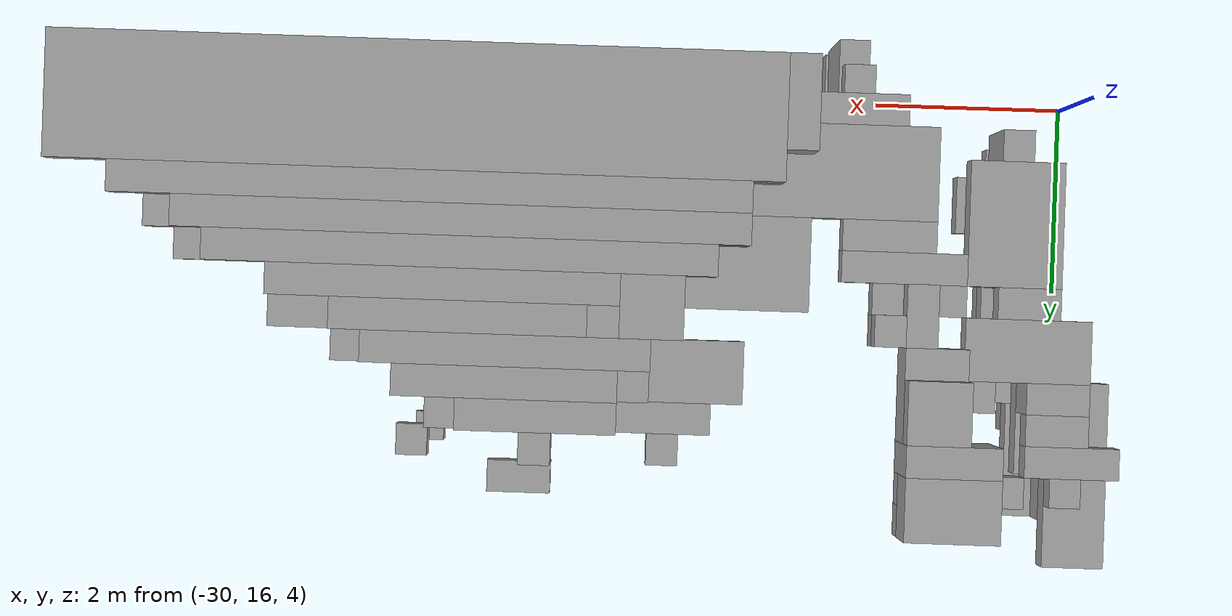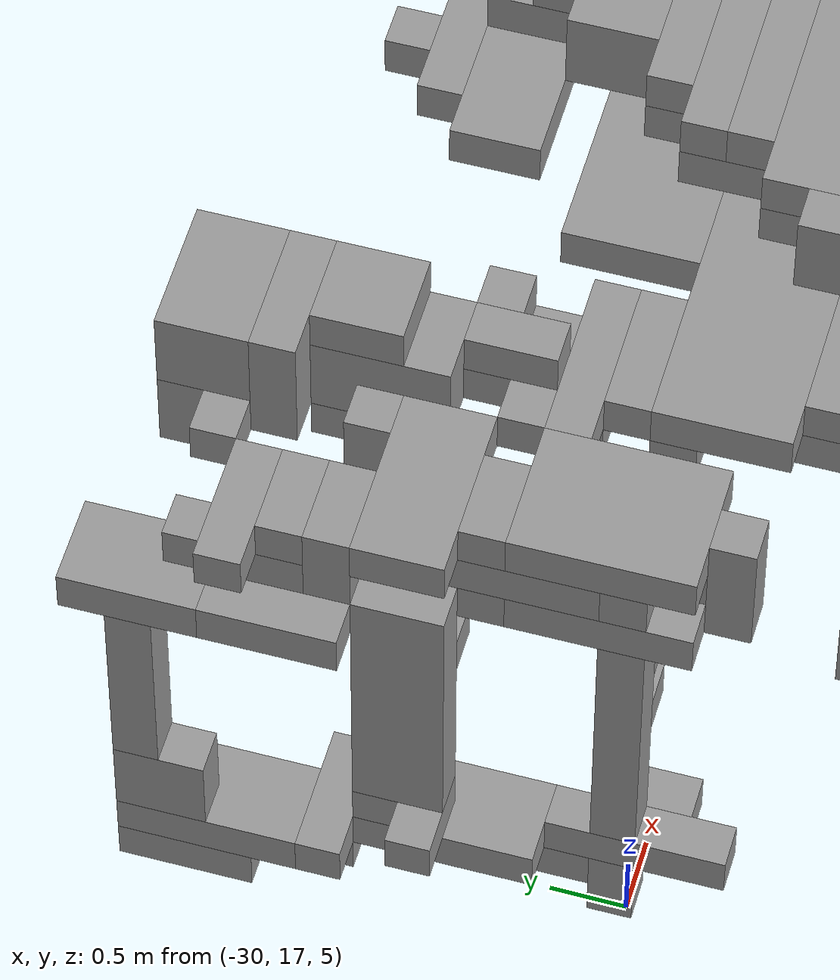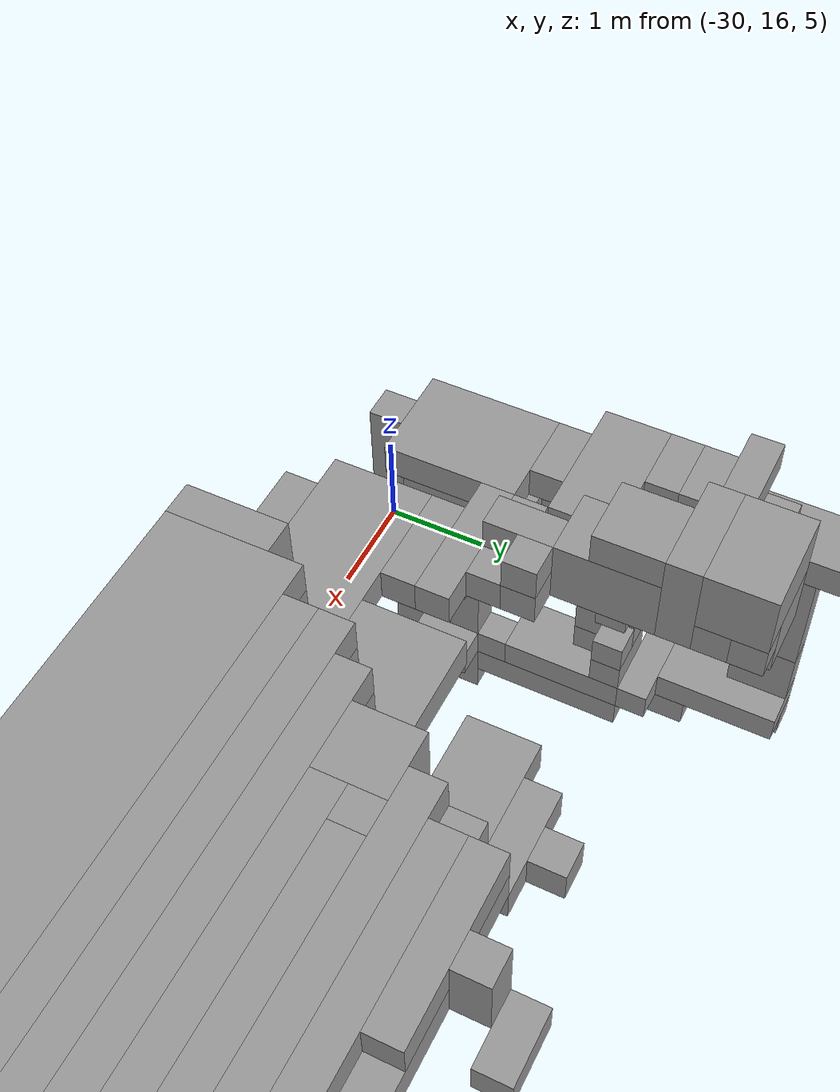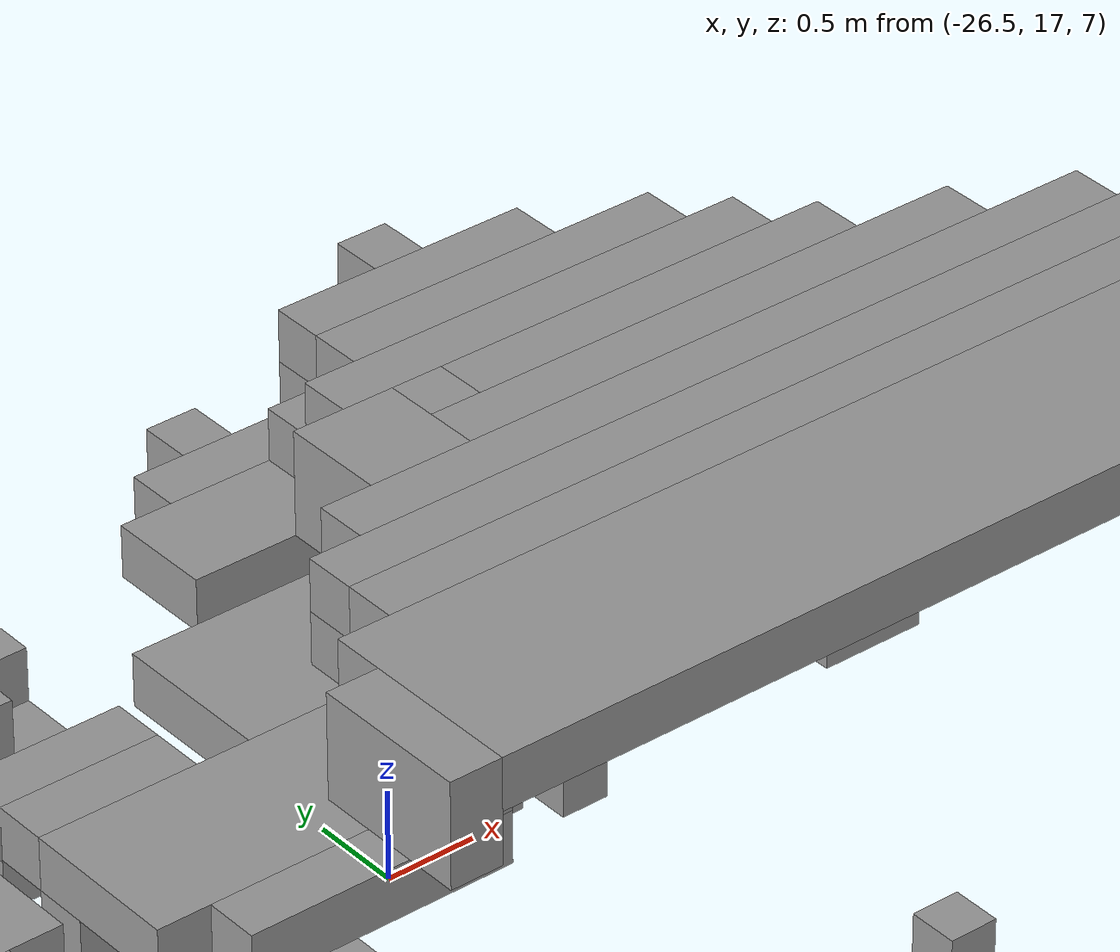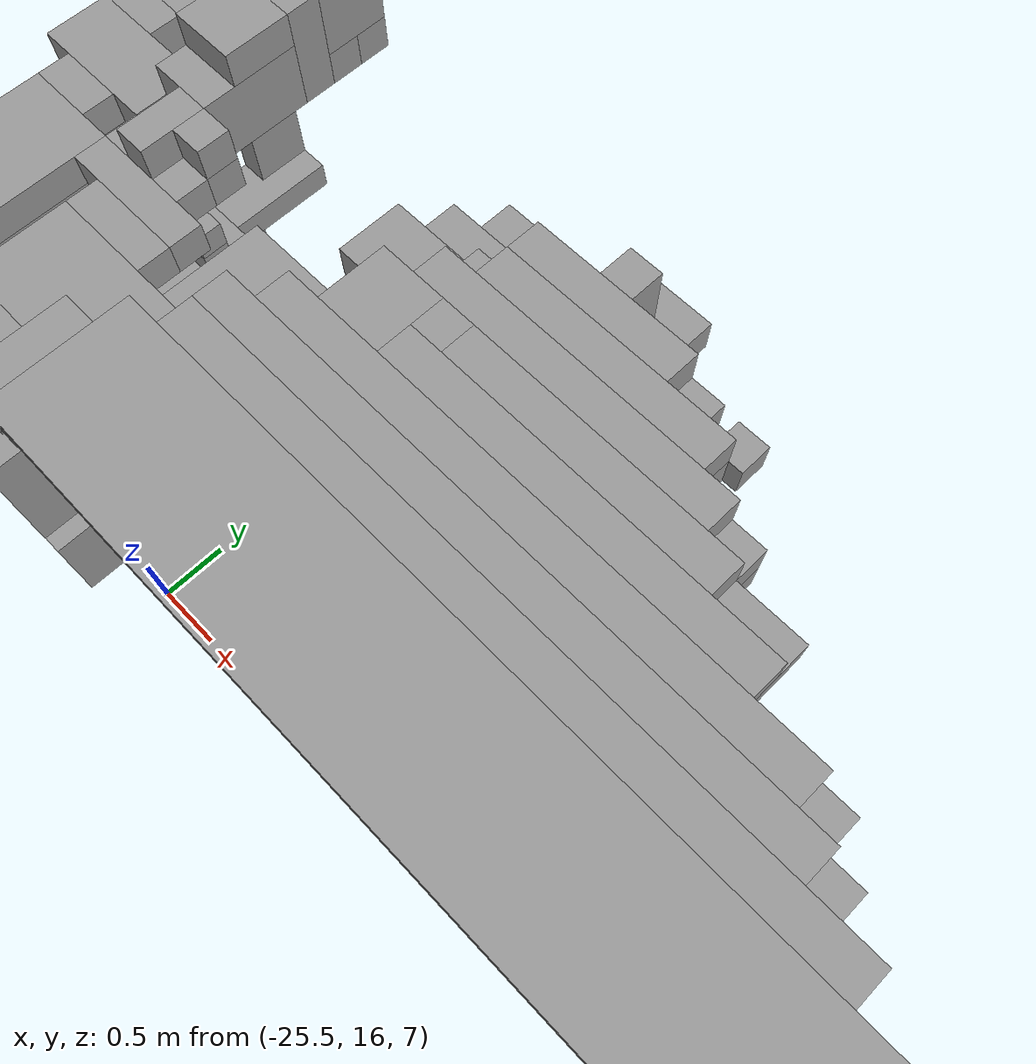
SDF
<sdf version="1.6">
 <world name="bt_world">
  <include><uri>model://sun</uri></include>
  <model name="obstacle_28">
   <static>true</static>
   <pose>-29.7 18.45 4.95 0 0 0</pose>
   <link name="link">
    <collision name="collision"><geometry><box><size>0.6 0.3 0.3</size></box></geometry></collision>
    <visual name="visual">
     <geometry><box><size>0.6 0.3 0.3</size></box></geometry>
     <material><ambient>0.5 0.5 0.5 1</ambient><diffuse>0.6 0.6 0.6 1</diffuse></material>
    </visual>
   </link>
  </model>
  <model name="obstacle_29">
   <static>true</static>
   <pose>-29.549999999999997 19.05 4.6499999999999995 0 0 0</pose>
   <link name="link">
    <collision name="collision">
     <geometry><box><size>0.8999999999999999 0.3 0.3</size></box></geometry>
    </collision>
    <visual name="visual">
     <geometry><box><size>0.8999999999999999 0.3 0.3</size></box></geometry>
     <material><ambient>0.5 0.5 0.5 1</ambient><diffuse>0.6 0.6 0.6 1</diffuse></material>
    </visual>
   </link>
  </model>
  <model name="obstacle_30">
   <static>true</static>
   <pose>-29.549999999999997 19.349999999999998 7.05 0 0 0</pose>
   <link name="link">
    <collision name="collision">
     <geometry><box><size>0.8999999999999999 0.8999999999999999 0.3</size></box></geometry>
    </collision>
    <visual name="visual">
     <geometry><box><size>0.8999999999999999 0.8999999999999999 0.3</size></box></geometry>
     <material><ambient>0.5 0.5 0.5 1</ambient><diffuse>0.6 0.6 0.6 1</diffuse></material>
    </visual>
   </link>
  </model>
  <model name="obstacle_31">
   <static>true</static>
   <pose>-29.7 19.8 4.6499999999999995 0 0 0</pose>
   <link name="link">
    <collision name="collision"><geometry><box><size>0.6 1.2 0.3</size></box></geometry></collision>
    <visual name="visual">
     <geometry><box><size>0.6 1.2 0.3</size></box></geometry>
     <material><ambient>0.5 0.5 0.5 1</ambient><diffuse>0.6 0.6 0.6 1</diffuse></material>
    </visual>
   </link>
  </model>
  <model name="obstacle_32">
   <static>true</static>
   <pose>-29.849999999999998 19.95 4.35 0 0 0</pose>
   <link name="link">
    <collision name="collision">
     <geometry><box><size>0.3 0.8999999999999999 0.3</size></box></geometry>
    </collision>
    <visual name="visual">
     <geometry><box><size>0.3 0.8999999999999999 0.3</size></box></geometry>
     <material><ambient>0.5 0.5 0.5 1</ambient><diffuse>0.6 0.6 0.6 1</diffuse></material>
    </visual>
   </link>
  </model>
  <model name="obstacle_33">
   <static>true</static>
   <pose>-29.549999999999997 19.65 7.6499999999999995 0 0 0</pose>
   <link name="link">
    <collision name="collision">
     <geometry><box><size>0.8999999999999999 0.3 0.3</size></box></geometry>
    </collision>
    <visual name="visual">
     <geometry><box><size>0.8999999999999999 0.3 0.3</size></box></geometry>
     <material><ambient>0.5 0.5 0.5 1</ambient><diffuse>0.6 0.6 0.6 1</diffuse></material>
    </visual>
   </link>
  </model>
  <model name="obstacle_34">
   <static>true</static>
   <pose>-29.849999999999998 20.099999999999998 5.1 0 0 0</pose>
   <link name="link">
    <collision name="collision"><geometry><box><size>0.3 0.6 0.6</size></box></geometry></collision>
    <visual name="visual">
     <geometry><box><size>0.3 0.6 0.6</size></box></geometry>
     <material><ambient>0.5 0.5 0.5 1</ambient><diffuse>0.6 0.6 0.6 1</diffuse></material>
    </visual>
   </link>
  </model>
  <model name="obstacle_35">
   <static>true</static>
   <pose>-29.7 20.25 7.05 0 0 0</pose>
   <link name="link">
    <collision name="collision">
     <geometry><box><size>0.6 0.8999999999999999 0.3</size></box></geometry>
    </collision>
    <visual name="visual">
     <geometry><box><size>0.6 0.8999999999999999 0.3</size></box></geometry>
     <material><ambient>0.5 0.5 0.5 1</ambient><diffuse>0.6 0.6 0.6 1</diffuse></material>
    </visual>
   </link>
  </model>
  <model name="obstacle_37">
   <static>true</static>
   <pose>-29.849999999999998 20.25 6.1499999999999995 0 0 0</pose>
   <link name="link">
    <collision name="collision"><geometry><box><size>0.3 0.3 1.5</size></box></geometry></collision>
    <visual name="visual">
     <geometry><box><size>0.3 0.3 1.5</size></box></geometry>
     <material><ambient>0.5 0.5 0.5 1</ambient><diffuse>0.6 0.6 0.6 1</diffuse></material>
    </visual>
   </link>
  </model>
  <model name="obstacle_44">
   <static>true</static>
   <pose>-29.4 18.3 4.6499999999999995 0 0 0</pose>
   <link name="link">
    <collision name="collision"><geometry><box><size>0.6 1.2 0.3</size></box></geometry></collision>
    <visual name="visual">
     <geometry><box><size>0.6 1.2 0.3</size></box></geometry>
     <material><ambient>0.5 0.5 0.5 1</ambient><diffuse>0.6 0.6 0.6 1</diffuse></material>
    </visual>
   </link>
  </model>
  <model name="obstacle_45">
   <static>true</static>
   <pose>-29.549999999999997 18.599999999999998 6.1499999999999995 0 0 0</pose>
   <link name="link">
    <collision name="collision"><geometry><box><size>0.3 0.6 2.1</size></box></geometry></collision>
    <visual name="visual">
     <geometry><box><size>0.3 0.6 2.1</size></box></geometry>
     <material><ambient>0.5 0.5 0.5 1</ambient><diffuse>0.6 0.6 0.6 1</diffuse></material>
    </visual>
   </link>
  </model>
  <model name="obstacle_46">
   <static>true</static>
   <pose>-29.099999999999998 18.599999999999998 7.6499999999999995 0 0 0</pose>
   <link name="link">
    <collision name="collision"><geometry><box><size>1.2 0.6 0.3</size></box></geometry></collision>
    <visual name="visual">
     <geometry><box><size>1.2 0.6 0.3</size></box></geometry>
     <material><ambient>0.5 0.5 0.5 1</ambient><diffuse>0.6 0.6 0.6 1</diffuse></material>
    </visual>
   </link>
  </model>
  <model name="obstacle_47">
   <static>true</static>
   <pose>-29.4 18.75 4.95 0 0 0</pose>
   <link name="link">
    <collision name="collision"><geometry><box><size>0.6 0.3 0.3</size></box></geometry></collision>
    <visual name="visual">
     <geometry><box><size>0.6 0.3 0.3</size></box></geometry>
     <material><ambient>0.5 0.5 0.5 1</ambient><diffuse>0.6 0.6 0.6 1</diffuse></material>
    </visual>
   </link>
  </model>
  <model name="obstacle_48">
   <static>true</static>
   <pose>-29.549999999999997 19.2 4.35 0 0 0</pose>
   <link name="link">
    <collision name="collision"><geometry><box><size>0.3 0.6 0.3</size></box></geometry></collision>
    <visual name="visual">
     <geometry><box><size>0.3 0.6 0.3</size></box></geometry>
     <material><ambient>0.5 0.5 0.5 1</ambient><diffuse>0.6 0.6 0.6 1</diffuse></material>
    </visual>
   </link>
  </model>
  <model name="obstacle_49">
   <static>true</static>
   <pose>-29.4 19.05 7.5 0 0 0</pose>
   <link name="link">
    <collision name="collision"><geometry><box><size>0.6 0.3 0.6</size></box></geometry></collision>
    <visual name="visual">
     <geometry><box><size>0.6 0.3 0.6</size></box></geometry>
     <material><ambient>0.5 0.5 0.5 1</ambient><diffuse>0.6 0.6 0.6 1</diffuse></material>
    </visual>
   </link>
  </model>
  <model name="obstacle_50">
   <static>true</static>
   <pose>-29.549999999999997 19.65 7.35 0 0 0</pose>
   <link name="link">
    <collision name="collision">
     <geometry><box><size>0.3 0.8999999999999999 0.3</size></box></geometry>
    </collision>
    <visual name="visual">
     <geometry><box><size>0.3 0.8999999999999999 0.3</size></box></geometry>
     <material><ambient>0.5 0.5 0.5 1</ambient><diffuse>0.6 0.6 0.6 1</diffuse></material>
    </visual>
   </link>
  </model>
  <model name="obstacle_51">
   <static>true</static>
   <pose>-29.4 19.349999999999998 7.6499999999999995 0 0 0</pose>
   <link name="link">
    <collision name="collision"><geometry><box><size>0.6 0.3 0.3</size></box></geometry></collision>
    <visual name="visual">
     <geometry><box><size>0.6 0.3 0.3</size></box></geometry>
     <material><ambient>0.5 0.5 0.5 1</ambient><diffuse>0.6 0.6 0.6 1</diffuse></material>
    </visual>
   </link>
  </model>
  <model name="obstacle_53">
   <static>true</static>
   <pose>-29.25 17.099999999999998 4.6499999999999995 0 0 0</pose>
   <link name="link">
    <collision name="collision"><geometry><box><size>0.3 1.2 0.3</size></box></geometry></collision>
    <visual name="visual">
     <geometry><box><size>0.3 1.2 0.3</size></box></geometry>
     <material><ambient>0.5 0.5 0.5 1</ambient><diffuse>0.6 0.6 0.6 1</diffuse></material>
    </visual>
   </link>
  </model>
  <model name="obstacle_54">
   <static>true</static>
   <pose>-29.099999999999998 17.4 7.05 0 0 0</pose>
   <link name="link">
    <collision name="collision"><geometry><box><size>0.6 1.2 0.3</size></box></geometry></collision>
    <visual name="visual">
     <geometry><box><size>0.6 1.2 0.3</size></box></geometry>
     <material><ambient>0.5 0.5 0.5 1</ambient><diffuse>0.6 0.6 0.6 1</diffuse></material>
    </visual>
   </link>
  </model>
  <model name="obstacle_55">
   <static>true</static>
   <pose>-28.95 17.4 7.6499999999999995 0 0 0</pose>
   <link name="link">
    <collision name="collision">
     <geometry><box><size>0.8999999999999999 1.2 0.3</size></box></geometry>
    </collision>
    <visual name="visual">
     <geometry><box><size>0.8999999999999999 1.2 0.3</size></box></geometry>
     <material><ambient>0.5 0.5 0.5 1</ambient><diffuse>0.6 0.6 0.6 1</diffuse></material>
    </visual>
   </link>
  </model>
  <model name="obstacle_56">
   <static>true</static>
   <pose>-29.25 17.25 4.2 0 0 0</pose>
   <link name="link">
    <collision name="collision"><geometry><box><size>0.3 0.3 0.6</size></box></geometry></collision>
    <visual name="visual">
     <geometry><box><size>0.3 0.3 0.6</size></box></geometry>
     <material><ambient>0.5 0.5 0.5 1</ambient><diffuse>0.6 0.6 0.6 1</diffuse></material>
    </visual>
   </link>
  </model>
  <model name="obstacle_57">
   <static>true</static>
   <pose>-29.25 17.25 5.85 0 0 0</pose>
   <link name="link">
    <collision name="collision"><geometry><box><size>0.3 0.3 2.1</size></box></geometry></collision>
    <visual name="visual">
     <geometry><box><size>0.3 0.3 2.1</size></box></geometry>
     <material><ambient>0.5 0.5 0.5 1</ambient><diffuse>0.6 0.6 0.6 1</diffuse></material>
    </visual>
   </link>
  </model>
  <model name="obstacle_58">
   <static>true</static>
   <pose>-29.099999999999998 17.25 7.35 0 0 0</pose>
   <link name="link">
    <collision name="collision"><geometry><box><size>0.6 0.3 0.3</size></box></geometry></collision>
    <visual name="visual">
     <geometry><box><size>0.6 0.3 0.3</size></box></geometry>
     <material><ambient>0.5 0.5 0.5 1</ambient><diffuse>0.6 0.6 0.6 1</diffuse></material>
    </visual>
   </link>
  </model>
  <model name="obstacle_59">
   <static>true</static>
   <pose>-29.25 18.15 4.35 0 0 0</pose>
   <link name="link">
    <collision name="collision"><geometry><box><size>0.3 1.5 0.3</size></box></geometry></collision>
    <visual name="visual">
     <geometry><box><size>0.3 1.5 0.3</size></box></geometry>
     <material><ambient>0.5 0.5 0.5 1</ambient><diffuse>0.6 0.6 0.6 1</diffuse></material>
    </visual>
   </link>
  </model>
  <model name="obstacle_60">
   <static>true</static>
   <pose>-29.25 18.15 7.35 0 0 0</pose>
   <link name="link">
    <collision name="collision"><geometry><box><size>0.3 1.5 0.3</size></box></geometry></collision>
    <visual name="visual">
     <geometry><box><size>0.3 1.5 0.3</size></box></geometry>
     <material><ambient>0.5 0.5 0.5 1</ambient><diffuse>0.6 0.6 0.6 1</diffuse></material>
    </visual>
   </link>
  </model>
  <model name="obstacle_61">
   <static>true</static>
   <pose>-29.25 18.45 7.05 0 0 0</pose>
   <link name="link">
    <collision name="collision">
     <geometry><box><size>0.3 0.8999999999999999 0.3</size></box></geometry>
    </collision>
    <visual name="visual">
     <geometry><box><size>0.3 0.8999999999999999 0.3</size></box></geometry>
     <material><ambient>0.5 0.5 0.5 1</ambient><diffuse>0.6 0.6 0.6 1</diffuse></material>
    </visual>
   </link>
  </model>
  <model name="obstacle_62">
   <static>true</static>
   <pose>-29.099999999999998 18.15 7.6499999999999995 0 0 0</pose>
   <link name="link">
    <collision name="collision"><geometry><box><size>0.6 0.3 0.3</size></box></geometry></collision>
    <visual name="visual">
     <geometry><box><size>0.6 0.3 0.3</size></box></geometry>
     <material><ambient>0.5 0.5 0.5 1</ambient><diffuse>0.6 0.6 0.6 1</diffuse></material>
    </visual>
   </link>
  </model>
  <model name="obstacle_63">
   <static>true</static>
   <pose>-29.25 18.599999999999998 6.45 0 0 0</pose>
   <link name="link">
    <collision name="collision"><geometry><box><size>0.3 0.6 0.3</size></box></geometry></collision>
    <visual name="visual">
     <geometry><box><size>0.3 0.6 0.3</size></box></geometry>
     <material><ambient>0.5 0.5 0.5 1</ambient><diffuse>0.6 0.6 0.6 1</diffuse></material>
    </visual>
   </link>
  </model>
  <model name="obstacle_64">
   <static>true</static>
   <pose>-29.25 18.75 5.25 0 0 0</pose>
   <link name="link">
    <collision name="collision"><geometry><box><size>0.3 0.3 0.3</size></box></geometry></collision>
    <visual name="visual">
     <geometry><box><size>0.3 0.3 0.3</size></box></geometry>
     <material><ambient>0.5 0.5 0.5 1</ambient><diffuse>0.6 0.6 0.6 1</diffuse></material>
    </visual>
   </link>
  </model>
  <model name="obstacle_65">
   <static>true</static>
   <pose>-29.25 18.75 6.0 0 0 0</pose>
   <link name="link">
    <collision name="collision"><geometry><box><size>0.3 0.3 0.6</size></box></geometry></collision>
    <visual name="visual">
     <geometry><box><size>0.3 0.3 0.6</size></box></geometry>
     <material><ambient>0.5 0.5 0.5 1</ambient><diffuse>0.6 0.6 0.6 1</diffuse></material>
    </visual>
   </link>
  </model>
  <model name="obstacle_66">
   <static>true</static>
   <pose>-29.25 18.75 6.75 0 0 0</pose>
   <link name="link">
    <collision name="collision"><geometry><box><size>0.3 0.3 0.3</size></box></geometry></collision>
    <visual name="visual">
     <geometry><box><size>0.3 0.3 0.3</size></box></geometry>
     <material><ambient>0.5 0.5 0.5 1</ambient><diffuse>0.6 0.6 0.6 1</diffuse></material>
    </visual>
   </link>
  </model>
  <model name="obstacle_75">
   <static>true</static>
   <pose>-28.95 16.65 7.35 0 0 0</pose>
   <link name="link">
    <collision name="collision">
     <geometry><box><size>0.3 0.3 0.8999999999999999</size></box></geometry>
    </collision>
    <visual name="visual">
     <geometry><box><size>0.3 0.3 0.8999999999999999</size></box></geometry>
     <material><ambient>0.5 0.5 0.5 1</ambient><diffuse>0.6 0.6 0.6 1</diffuse></material>
    </visual>
   </link>
  </model>
  <model name="obstacle_76">
   <static>true</static>
   <pose>-28.95 17.099999999999998 4.6499999999999995 0 0 0</pose>
   <link name="link">
    <collision name="collision"><geometry><box><size>0.3 0.6 0.3</size></box></geometry></collision>
    <visual name="visual">
     <geometry><box><size>0.3 0.6 0.3</size></box></geometry>
     <material><ambient>0.5 0.5 0.5 1</ambient><diffuse>0.6 0.6 0.6 1</diffuse></material>
    </visual>
   </link>
  </model>
  <model name="obstacle_77">
   <static>true</static>
   <pose>-28.95 16.95 7.35 0 0 0</pose>
   <link name="link">
    <collision name="collision"><geometry><box><size>0.3 0.3 0.3</size></box></geometry></collision>
    <visual name="visual">
     <geometry><box><size>0.3 0.3 0.3</size></box></geometry>
     <material><ambient>0.5 0.5 0.5 1</ambient><diffuse>0.6 0.6 0.6 1</diffuse></material>
    </visual>
   </link>
  </model>
  <model name="obstacle_78">
   <static>true</static>
   <pose>-28.95 17.25 5.85 0 0 0</pose>
   <link name="link">
    <collision name="collision"><geometry><box><size>0.3 0.3 0.3</size></box></geometry></collision>
    <visual name="visual">
     <geometry><box><size>0.3 0.3 0.3</size></box></geometry>
     <material><ambient>0.5 0.5 0.5 1</ambient><diffuse>0.6 0.6 0.6 1</diffuse></material>
    </visual>
   </link>
  </model>
  <model name="obstacle_79">
   <static>true</static>
   <pose>-28.95 17.25 6.6 0 0 0</pose>
   <link name="link">
    <collision name="collision"><geometry><box><size>0.3 0.3 0.6</size></box></geometry></collision>
    <visual name="visual">
     <geometry><box><size>0.3 0.3 0.6</size></box></geometry>
     <material><ambient>0.5 0.5 0.5 1</ambient><diffuse>0.6 0.6 0.6 1</diffuse></material>
    </visual>
   </link>
  </model>
  <model name="obstacle_80">
   <static>true</static>
   <pose>-28.5 19.95 7.6499999999999995 0 0 0</pose>
   <link name="link">
    <collision name="collision"><geometry><box><size>1.2 0.3 0.3</size></box></geometry></collision>
    <visual name="visual">
     <geometry><box><size>1.2 0.3 0.3</size></box></geometry>
     <material><ambient>0.5 0.5 0.5 1</ambient><diffuse>0.6 0.6 0.6 1</diffuse></material>
    </visual>
   </link>
  </model>
  <model name="obstacle_101">
   <static>true</static>
   <pose>-28.65 19.05 7.5 0 0 0</pose>
   <link name="link">
    <collision name="collision"><geometry><box><size>0.3 0.3 0.6</size></box></geometry></collision>
    <visual name="visual">
     <geometry><box><size>0.3 0.3 0.6</size></box></geometry>
     <material><ambient>0.5 0.5 0.5 1</ambient><diffuse>0.6 0.6 0.6 1</diffuse></material>
    </visual>
   </link>
  </model>
  <model name="obstacle_102">
   <static>true</static>
   <pose>-28.349999999999998 19.65 7.949999999999999 0 0 0</pose>
   <link name="link">
    <collision name="collision">
     <geometry><box><size>0.8999999999999999 0.3 0.8999999999999999</size></box></geometry>
    </collision>
    <visual name="visual">
     <geometry><box><size>0.8999999999999999 0.3 0.8999999999999999</size></box></geometry>
     <material><ambient>0.5 0.5 0.5 1</ambient><diffuse>0.6 0.6 0.6 1</diffuse></material>
    </visual>
   </link>
  </model>
  <model name="obstacle_103">
   <static>true</static>
   <pose>-28.349999999999998 20.099999999999998 8.1 0 0 0</pose>
   <link name="link">
    <collision name="collision">
     <geometry><box><size>0.8999999999999999 0.6 0.6</size></box></geometry>
    </collision>
    <visual name="visual">
     <geometry><box><size>0.8999999999999999 0.6 0.6</size></box></geometry>
     <material><ambient>0.5 0.5 0.5 1</ambient><diffuse>0.6 0.6 0.6 1</diffuse></material>
    </visual>
   </link>
  </model>
  <model name="obstacle_104">
   <static>true</static>
   <pose>-28.5 20.25 7.5 0 0 0</pose>
   <link name="link">
    <collision name="collision"><geometry><box><size>0.6 0.3 0.6</size></box></geometry></collision>
    <visual name="visual">
     <geometry><box><size>0.6 0.3 0.6</size></box></geometry>
     <material><ambient>0.5 0.5 0.5 1</ambient><diffuse>0.6 0.6 0.6 1</diffuse></material>
    </visual>
   </link>
  </model>
  <model name="obstacle_123">
   <static>true</static>
   <pose>-27.9 17.849999999999998 7.6499999999999995 0 0 0</pose>
   <link name="link">
    <collision name="collision"><geometry><box><size>1.2 0.3 0.3</size></box></geometry></collision>
    <visual name="visual">
     <geometry><box><size>1.2 0.3 0.3</size></box></geometry>
     <material><ambient>0.5 0.5 0.5 1</ambient><diffuse>0.6 0.6 0.6 1</diffuse></material>
    </visual>
   </link>
  </model>
  <model name="obstacle_124">
   <static>true</static>
   <pose>-28.05 18.15 7.6499999999999995 0 0 0</pose>
   <link name="link">
    <collision name="collision">
     <geometry><box><size>0.8999999999999999 0.3 0.3</size></box></geometry>
    </collision>
    <visual name="visual">
     <geometry><box><size>0.8999999999999999 0.3 0.3</size></box></geometry>
     <material><ambient>0.5 0.5 0.5 1</ambient><diffuse>0.6 0.6 0.6 1</diffuse></material>
    </visual>
   </link>
  </model>
  <model name="obstacle_125">
   <static>true</static>
   <pose>-28.2 19.05 7.8 0 0 0</pose>
   <link name="link">
    <collision name="collision">
     <geometry><box><size>0.6 0.8999999999999999 0.6</size></box></geometry>
    </collision>
    <visual name="visual">
     <geometry><box><size>0.6 0.8999999999999999 0.6</size></box></geometry>
     <material><ambient>0.5 0.5 0.5 1</ambient><diffuse>0.6 0.6 0.6 1</diffuse></material>
    </visual>
   </link>
  </model>
  <model name="obstacle_126">
   <static>true</static>
   <pose>-28.2 19.2 8.25 0 0 0</pose>
   <link name="link">
    <collision name="collision"><geometry><box><size>0.6 0.6 0.3</size></box></geometry></collision>
    <visual name="visual">
     <geometry><box><size>0.6 0.6 0.3</size></box></geometry>
     <material><ambient>0.5 0.5 0.5 1</ambient><diffuse>0.6 0.6 0.6 1</diffuse></material>
    </visual>
   </link>
  </model>
  <model name="obstacle_127">
   <static>true</static>
   <pose>-28.349999999999998 19.349999999999998 7.35 0 0 0</pose>
   <link name="link">
    <collision name="collision"><geometry><box><size>0.3 0.3 0.3</size></box></geometry></collision>
    <visual name="visual">
     <geometry><box><size>0.3 0.3 0.3</size></box></geometry>
     <material><ambient>0.5 0.5 0.5 1</ambient><diffuse>0.6 0.6 0.6 1</diffuse></material>
    </visual>
   </link>
  </model>
  <model name="obstacle_141">
   <static>true</static>
   <pose>-27.15 16.95 7.6499999999999995 0 0 0</pose>
   <link name="link">
    <collision name="collision">
     <geometry><box><size>2.1 0.8999999999999999 0.3</size></box></geometry>
    </collision>
    <visual name="visual">
     <geometry><box><size>2.1 0.8999999999999999 0.3</size></box></geometry>
     <material><ambient>0.5 0.5 0.5 1</ambient><diffuse>0.6 0.6 0.6 1</diffuse></material>
    </visual>
   </link>
  </model>
  <model name="obstacle_142">
   <static>true</static>
   <pose>-27.9 17.25 7.35 0 0 0</pose>
   <link name="link">
    <collision name="collision"><geometry><box><size>0.6 0.3 0.3</size></box></geometry></collision>
    <visual name="visual">
     <geometry><box><size>0.6 0.3 0.3</size></box></geometry>
     <material><ambient>0.5 0.5 0.5 1</ambient><diffuse>0.6 0.6 0.6 1</diffuse></material>
    </visual>
   </link>
  </model>
  <model name="obstacle_143">
   <static>true</static>
   <pose>-27.75 17.55 7.6499999999999995 0 0 0</pose>
   <link name="link">
    <collision name="collision">
     <geometry><box><size>0.8999999999999999 0.3 0.3</size></box></geometry>
    </collision>
    <visual name="visual">
     <geometry><box><size>0.8999999999999999 0.3 0.3</size></box></geometry>
     <material><ambient>0.5 0.5 0.5 1</ambient><diffuse>0.6 0.6 0.6 1</diffuse></material>
    </visual>
   </link>
  </model>
  <model name="obstacle_144">
   <static>true</static>
   <pose>-28.05 17.849999999999998 7.35 0 0 0</pose>
   <link name="link">
    <collision name="collision"><geometry><box><size>0.3 0.3 0.3</size></box></geometry></collision>
    <visual name="visual">
     <geometry><box><size>0.3 0.3 0.3</size></box></geometry>
     <material><ambient>0.5 0.5 0.5 1</ambient><diffuse>0.6 0.6 0.6 1</diffuse></material>
    </visual>
   </link>
  </model>
  <model name="obstacle_145">
   <static>true</static>
   <pose>-28.05 18.3 7.949999999999999 0 0 0</pose>
   <link name="link">
    <collision name="collision"><geometry><box><size>0.3 0.6 0.3</size></box></geometry></collision>
    <visual name="visual">
     <geometry><box><size>0.3 0.6 0.3</size></box></geometry>
     <material><ambient>0.5 0.5 0.5 1</ambient><diffuse>0.6 0.6 0.6 1</diffuse></material>
    </visual>
   </link>
  </model>
  <model name="obstacle_146">
   <static>true</static>
   <pose>-27.9 18.45 7.6499999999999995 0 0 0</pose>
   <link name="link">
    <collision name="collision"><geometry><box><size>0.6 0.3 0.3</size></box></geometry></collision>
    <visual name="visual">
     <geometry><box><size>0.6 0.3 0.3</size></box></geometry>
     <material><ambient>0.5 0.5 0.5 1</ambient><diffuse>0.6 0.6 0.6 1</diffuse></material>
    </visual>
   </link>
  </model>
  <model name="obstacle_147">
   <static>true</static>
   <pose>-28.05 20.25 7.6499999999999995 0 0 0</pose>
   <link name="link">
    <collision name="collision"><geometry><box><size>0.3 0.3 0.3</size></box></geometry></collision>
    <visual name="visual">
     <geometry><box><size>0.3 0.3 0.3</size></box></geometry>
     <material><ambient>0.5 0.5 0.5 1</ambient><diffuse>0.6 0.6 0.6 1</diffuse></material>
    </visual>
   </link>
  </model>
  <model name="obstacle_154">
   <static>true</static>
   <pose>-27.75 16.5 7.35 0 0 0</pose>
   <link name="link">
    <collision name="collision"><geometry><box><size>0.3 0.6 0.3</size></box></geometry></collision>
    <visual name="visual">
     <geometry><box><size>0.3 0.6 0.3</size></box></geometry>
     <material><ambient>0.5 0.5 0.5 1</ambient><diffuse>0.6 0.6 0.6 1</diffuse></material>
    </visual>
   </link>
  </model>
  <model name="obstacle_155">
   <static>true</static>
   <pose>-27.15 16.349999999999998 7.6499999999999995 0 0 0</pose>
   <link name="link">
    <collision name="collision"><geometry><box><size>1.5 0.3 0.3</size></box></geometry></collision>
    <visual name="visual">
     <geometry><box><size>1.5 0.3 0.3</size></box></geometry>
     <material><ambient>0.5 0.5 0.5 1</ambient><diffuse>0.6 0.6 0.6 1</diffuse></material>
    </visual>
   </link>
  </model>
  <model name="obstacle_156">
   <static>true</static>
   <pose>-27.75 18.45 7.949999999999999 0 0 0</pose>
   <link name="link">
    <collision name="collision"><geometry><box><size>0.3 0.3 0.3</size></box></geometry></collision>
    <visual name="visual">
     <geometry><box><size>0.3 0.3 0.3</size></box></geometry>
     <material><ambient>0.5 0.5 0.5 1</ambient><diffuse>0.6 0.6 0.6 1</diffuse></material>
    </visual>
   </link>
  </model>
  <model name="obstacle_167">
   <static>true</static>
   <pose>-27.45 15.899999999999999 4.95 0 0 0</pose>
   <link name="link">
    <collision name="collision">
     <geometry><box><size>0.3 0.6 0.8999999999999999</size></box></geometry>
    </collision>
    <visual name="visual">
     <geometry><box><size>0.3 0.6 0.8999999999999999</size></box></geometry>
     <material><ambient>0.5 0.5 0.5 1</ambient><diffuse>0.6 0.6 0.6 1</diffuse></material>
    </visual>
   </link>
  </model>
  <model name="obstacle_168">
   <static>true</static>
   <pose>-27.45 15.899999999999999 6.3 0 0 0</pose>
   <link name="link">
    <collision name="collision"><geometry><box><size>0.3 0.6 1.2</size></box></geometry></collision>
    <visual name="visual">
     <geometry><box><size>0.3 0.6 1.2</size></box></geometry>
     <material><ambient>0.5 0.5 0.5 1</ambient><diffuse>0.6 0.6 0.6 1</diffuse></material>
    </visual>
   </link>
  </model>
  <model name="obstacle_169">
   <static>true</static>
   <pose>-27.45 16.05 7.35 0 0 0</pose>
   <link name="link">
    <collision name="collision"><geometry><box><size>0.3 0.3 0.3</size></box></geometry></collision>
    <visual name="visual">
     <geometry><box><size>0.3 0.3 0.3</size></box></geometry>
     <material><ambient>0.5 0.5 0.5 1</ambient><diffuse>0.6 0.6 0.6 1</diffuse></material>
    </visual>
   </link>
  </model>
  <model name="obstacle_186">
   <static>true</static>
   <pose>-26.849999999999998 16.349999999999998 8.1 0 0 0</pose>
   <link name="link">
    <collision name="collision">
     <geometry><box><size>0.3 0.8999999999999999 0.6</size></box></geometry>
    </collision>
    <visual name="visual">
     <geometry><box><size>0.3 0.8999999999999999 0.6</size></box></geometry>
     <material><ambient>0.5 0.5 0.5 1</ambient><diffuse>0.6 0.6 0.6 1</diffuse></material>
    </visual>
   </link>
  </model>
  <model name="obstacle_187">
   <static>true</static>
   <pose>-26.25 17.849999999999998 7.6499999999999995 0 0 0</pose>
   <link name="link">
    <collision name="collision">
     <geometry><box><size>1.5 0.8999999999999999 0.3</size></box></geometry>
    </collision>
    <visual name="visual">
     <geometry><box><size>1.5 0.8999999999999999 0.3</size></box></geometry>
     <material><ambient>0.5 0.5 0.5 1</ambient><diffuse>0.6 0.6 0.6 1</diffuse></material>
    </visual>
   </link>
  </model>
  <model name="obstacle_196">
   <static>true</static>
   <pose>-23.25 16.5 8.25 0 0 0</pose>
   <link name="link">
    <collision name="collision">
     <geometry><box><size>6.8999999999999995 1.2 0.3</size></box></geometry>
    </collision>
    <visual name="visual">
     <geometry><box><size>6.8999999999999995 1.2 0.3</size></box></geometry>
     <material><ambient>0.5 0.5 0.5 1</ambient><diffuse>0.6 0.6 0.6 1</diffuse></material>
    </visual>
   </link>
  </model>
  <model name="obstacle_197">
   <static>true</static>
   <pose>-26.55 16.65 7.949999999999999 0 0 0</pose>
   <link name="link">
    <collision name="collision">
     <geometry><box><size>0.3 0.8999999999999999 0.3</size></box></geometry>
    </collision>
    <visual name="visual">
     <geometry><box><size>0.3 0.8999999999999999 0.3</size></box></geometry>
     <material><ambient>0.5 0.5 0.5 1</ambient><diffuse>0.6 0.6 0.6 1</diffuse></material>
    </visual>
   </link>
  </model>
  <model name="obstacle_206">
   <static>true</static>
   <pose>-26.25 17.099999999999998 7.949999999999999 0 0 0</pose>
   <link name="link">
    <collision name="collision"><geometry><box><size>0.3 1.2 0.3</size></box></geometry></collision>
    <visual name="visual">
     <geometry><box><size>0.3 1.2 0.3</size></box></geometry>
     <material><ambient>0.5 0.5 0.5 1</ambient><diffuse>0.6 0.6 0.6 1</diffuse></material>
    </visual>
   </link>
  </model>
  <model name="obstacle_207">
   <static>true</static>
   <pose>-23.4 17.25 8.25 0 0 0</pose>
   <link name="link">
    <collision name="collision"><geometry><box><size>6.0 0.3 0.3</size></box></geometry></collision>
    <visual name="visual">
     <geometry><box><size>6.0 0.3 0.3</size></box></geometry>
     <material><ambient>0.5 0.5 0.5 1</ambient><diffuse>0.6 0.6 0.6 1</diffuse></material>
    </visual>
   </link>
  </model>
  <model name="obstacle_208">
   <static>true</static>
   <pose>-23.7 17.55 8.25 0 0 0</pose>
   <link name="link">
    <collision name="collision">
     <geometry><box><size>5.3999999999999995 0.3 0.3</size></box></geometry>
    </collision>
    <visual name="visual">
     <geometry><box><size>5.3999999999999995 0.3 0.3</size></box></geometry>
     <material><ambient>0.5 0.5 0.5 1</ambient><diffuse>0.6 0.6 0.6 1</diffuse></material>
    </visual>
   </link>
  </model>
  <model name="obstacle_209">
   <static>true</static>
   <pose>-25.65 18.9 7.6499999999999995 0 0 0</pose>
   <link name="link">
    <collision name="collision"><geometry><box><size>1.5 0.6 0.3</size></box></geometry></collision>
    <visual name="visual">
     <geometry><box><size>1.5 0.6 0.3</size></box></geometry>
     <material><ambient>0.5 0.5 0.5 1</ambient><diffuse>0.6 0.6 0.6 1</diffuse></material>
    </visual>
   </link>
  </model>
  <model name="obstacle_220">
   <static>true</static>
   <pose>-25.8 17.25 7.8 0 0 0</pose>
   <link name="link">
    <collision name="collision"><geometry><box><size>0.6 0.3 0.6</size></box></geometry></collision>
    <visual name="visual">
     <geometry><box><size>0.6 0.3 0.6</size></box></geometry>
     <material><ambient>0.5 0.5 0.5 1</ambient><diffuse>0.6 0.6 0.6 1</diffuse></material>
    </visual>
   </link>
  </model>
  <model name="obstacle_221">
   <static>true</static>
   <pose>-25.8 17.7 7.949999999999999 0 0 0</pose>
   <link name="link">
    <collision name="collision"><geometry><box><size>0.6 0.6 0.3</size></box></geometry></collision>
    <visual name="visual">
     <geometry><box><size>0.6 0.6 0.3</size></box></geometry>
     <material><ambient>0.5 0.5 0.5 1</ambient><diffuse>0.6 0.6 0.6 1</diffuse></material>
    </visual>
   </link>
  </model>
  <model name="obstacle_222">
   <static>true</static>
   <pose>-23.7 17.849999999999998 8.25 0 0 0</pose>
   <link name="link">
    <collision name="collision"><geometry><box><size>4.8 0.3 0.3</size></box></geometry></collision>
    <visual name="visual">
     <geometry><box><size>4.8 0.3 0.3</size></box></geometry>
     <material><ambient>0.5 0.5 0.5 1</ambient><diffuse>0.6 0.6 0.6 1</diffuse></material>
    </visual>
   </link>
  </model>
  <model name="obstacle_223">
   <static>true</static>
   <pose>-25.65 19.349999999999998 7.6499999999999995 0 0 0</pose>
   <link name="link">
    <collision name="collision">
     <geometry><box><size>0.8999999999999999 0.3 0.3</size></box></geometry>
    </collision>
    <visual name="visual">
     <geometry><box><size>0.8999999999999999 0.3 0.3</size></box></geometry>
     <material><ambient>0.5 0.5 0.5 1</ambient><diffuse>0.6 0.6 0.6 1</diffuse></material>
    </visual>
   </link>
  </model>
  <model name="obstacle_232">
   <static>true</static>
   <pose>-25.65 17.25 7.35 0 0 0</pose>
   <link name="link">
    <collision name="collision"><geometry><box><size>0.3 0.3 0.3</size></box></geometry></collision>
    <visual name="visual">
     <geometry><box><size>0.3 0.3 0.3</size></box></geometry>
     <material><ambient>0.5 0.5 0.5 1</ambient><diffuse>0.6 0.6 0.6 1</diffuse></material>
    </visual>
   </link>
  </model>
  <model name="obstacle_233">
   <static>true</static>
   <pose>-25.5 18.3 8.1 0 0 0</pose>
   <link name="link">
    <collision name="collision"><geometry><box><size>0.6 0.6 0.6</size></box></geometry></collision>
    <visual name="visual">
     <geometry><box><size>0.6 0.6 0.6</size></box></geometry>
     <material><ambient>0.5 0.5 0.5 1</ambient><diffuse>0.6 0.6 0.6 1</diffuse></material>
    </visual>
   </link>
  </model>
  <model name="obstacle_234">
   <static>true</static>
   <pose>-25.65 19.65 7.6499999999999995 0 0 0</pose>
   <link name="link">
    <collision name="collision"><geometry><box><size>0.3 0.3 0.3</size></box></geometry></collision>
    <visual name="visual">
     <geometry><box><size>0.3 0.3 0.3</size></box></geometry>
     <material><ambient>0.5 0.5 0.5 1</ambient><diffuse>0.6 0.6 0.6 1</diffuse></material>
    </visual>
   </link>
  </model>
  <model name="obstacle_245">
   <static>true</static>
   <pose>-25.349999999999998 18.15 7.6499999999999995 0 0 0</pose>
   <link name="link">
    <collision name="collision"><geometry><box><size>0.3 0.3 0.3</size></box></geometry></collision>
    <visual name="visual">
     <geometry><box><size>0.3 0.3 0.3</size></box></geometry>
     <material><ambient>0.5 0.5 0.5 1</ambient><diffuse>0.6 0.6 0.6 1</diffuse></material>
    </visual>
   </link>
  </model>
  <model name="obstacle_246">
   <static>true</static>
   <pose>-25.2 18.9 7.949999999999999 0 0 0</pose>
   <link name="link">
    <collision name="collision"><geometry><box><size>0.6 0.6 0.3</size></box></geometry></collision>
    <visual name="visual">
     <geometry><box><size>0.6 0.6 0.3</size></box></geometry>
     <material><ambient>0.5 0.5 0.5 1</ambient><diffuse>0.6 0.6 0.6 1</diffuse></material>
    </visual>
   </link>
  </model>
  <model name="obstacle_247">
   <static>true</static>
   <pose>-24.15 18.75 8.25 0 0 0</pose>
   <link name="link">
    <collision name="collision">
     <geometry><box><size>2.6999999999999997 0.3 0.3</size></box></geometry>
    </collision>
    <visual name="visual">
     <geometry><box><size>2.6999999999999997 0.3 0.3</size></box></geometry>
     <material><ambient>0.5 0.5 0.5 1</ambient><diffuse>0.6 0.6 0.6 1</diffuse></material>
    </visual>
   </link>
  </model>
  <model name="obstacle_277">
   <static>true</static>
   <pose>-23.55 18.15 8.25 0 0 0</pose>
   <link name="link">
    <collision name="collision"><geometry><box><size>3.3 0.3 0.3</size></box></geometry></collision>
    <visual name="visual">
     <geometry><box><size>3.3 0.3 0.3</size></box></geometry>
     <material><ambient>0.5 0.5 0.5 1</ambient><diffuse>0.6 0.6 0.6 1</diffuse></material>
    </visual>
   </link>
  </model>
  <model name="obstacle_278">
   <static>true</static>
   <pose>-25.05 18.45 8.1 0 0 0</pose>
   <link name="link">
    <collision name="collision"><geometry><box><size>0.3 0.3 0.6</size></box></geometry></collision>
    <visual name="visual">
     <geometry><box><size>0.3 0.3 0.6</size></box></geometry>
     <material><ambient>0.5 0.5 0.5 1</ambient><diffuse>0.6 0.6 0.6 1</diffuse></material>
    </visual>
   </link>
  </model>
  <model name="obstacle_279">
   <static>true</static>
   <pose>-24.15 19.05 8.25 0 0 0</pose>
   <link name="link">
    <collision name="collision"><geometry><box><size>2.1 0.3 0.3</size></box></geometry></collision>
    <visual name="visual">
     <geometry><box><size>2.1 0.3 0.3</size></box></geometry>
     <material><ambient>0.5 0.5 0.5 1</ambient><diffuse>0.6 0.6 0.6 1</diffuse></material>
    </visual>
   </link>
  </model>
  <model name="obstacle_280">
   <static>true</static>
   <pose>-24.3 19.349999999999998 7.949999999999999 0 0 0</pose>
   <link name="link">
    <collision name="collision">
     <geometry><box><size>1.7999999999999998 0.3 0.3</size></box></geometry>
    </collision>
    <visual name="visual">
     <geometry><box><size>1.7999999999999998 0.3 0.3</size></box></geometry>
     <material><ambient>0.5 0.5 0.5 1</ambient><diffuse>0.6 0.6 0.6 1</diffuse></material>
    </visual>
   </link>
  </model>
  <model name="obstacle_281">
   <static>true</static>
   <pose>-24.45 19.349999999999998 8.25 0 0 0</pose>
   <link name="link">
    <collision name="collision"><geometry><box><size>1.5 0.3 0.3</size></box></geometry></collision>
    <visual name="visual">
     <geometry><box><size>1.5 0.3 0.3</size></box></geometry>
     <material><ambient>0.5 0.5 0.5 1</ambient><diffuse>0.6 0.6 0.6 1</diffuse></material>
    </visual>
   </link>
  </model>
  <model name="obstacle_300">
   <static>true</static>
   <pose>-24.3 18.75 7.35 0 0 0</pose>
   <link name="link">
    <collision name="collision">
     <geometry><box><size>1.2 0.8999999999999999 0.3</size></box></geometry>
    </collision>
    <visual name="visual">
     <geometry><box><size>1.2 0.8999999999999999 0.3</size></box></geometry>
     <material><ambient>0.5 0.5 0.5 1</ambient><diffuse>0.6 0.6 0.6 1</diffuse></material>
    </visual>
   </link>
  </model>
  <model name="obstacle_301">
   <static>true</static>
   <pose>-23.7 18.45 8.25 0 0 0</pose>
   <link name="link">
    <collision name="collision"><geometry><box><size>2.4 0.3 0.3</size></box></geometry></collision>
    <visual name="visual">
     <geometry><box><size>2.4 0.3 0.3</size></box></geometry>
     <material><ambient>0.5 0.5 0.5 1</ambient><diffuse>0.6 0.6 0.6 1</diffuse></material>
    </visual>
   </link>
  </model>
  <model name="obstacle_302">
   <static>true</static>
   <pose>-24.75 19.05 7.949999999999999 0 0 0</pose>
   <link name="link">
    <collision name="collision"><geometry><box><size>0.3 0.3 0.3</size></box></geometry></collision>
    <visual name="visual">
     <geometry><box><size>0.3 0.3 0.3</size></box></geometry>
     <material><ambient>0.5 0.5 0.5 1</ambient><diffuse>0.6 0.6 0.6 1</diffuse></material>
    </visual>
   </link>
  </model>
  <model name="obstacle_361">
   <static>true</static>
   <pose>-22.65 17.55 7.949999999999999 0 0 0</pose>
   <link name="link">
    <collision name="collision"><geometry><box><size>3.9 0.3 0.3</size></box></geometry></collision>
    <visual name="visual">
     <geometry><box><size>3.9 0.3 0.3</size></box></geometry>
     <material><ambient>0.5 0.5 0.5 1</ambient><diffuse>0.6 0.6 0.6 1</diffuse></material>
    </visual>
   </link>
  </model>
  <model name="obstacle_362">
   <static>true</static>
   <pose>-22.8 17.849999999999998 7.949999999999999 0 0 0</pose>
   <link name="link">
    <collision name="collision">
     <geometry><box><size>3.5999999999999996 0.3 0.3</size></box></geometry>
    </collision>
    <visual name="visual">
     <geometry><box><size>3.5999999999999996 0.3 0.3</size></box></geometry>
     <material><ambient>0.5 0.5 0.5 1</ambient><diffuse>0.6 0.6 0.6 1</diffuse></material>
    </visual>
   </link>
  </model>
  <model name="obstacle_364">
   <static>true</static>
   <pose>-24.45 18.75 7.6499999999999995 0 0 0</pose>
   <link name="link">
    <collision name="collision"><geometry><box><size>0.3 0.3 0.3</size></box></geometry></collision>
    <visual name="visual">
     <geometry><box><size>0.3 0.3 0.3</size></box></geometry>
     <material><ambient>0.5 0.5 0.5 1</ambient><diffuse>0.6 0.6 0.6 1</diffuse></material>
    </visual>
   </link>
  </model>
  <model name="obstacle_366">
   <static>true</static>
   <pose>-24.45 19.65 8.1 0 0 0</pose>
   <link name="link">
    <collision name="collision"><geometry><box><size>0.3 0.3 0.6</size></box></geometry></collision>
    <visual name="visual">
     <geometry><box><size>0.3 0.3 0.6</size></box></geometry>
     <material><ambient>0.5 0.5 0.5 1</ambient><diffuse>0.6 0.6 0.6 1</diffuse></material>
    </visual>
   </link>
  </model>
  <model name="obstacle_367">
   <static>true</static>
   <pose>-24.3 19.95 7.6499999999999995 0 0 0</pose>
   <link name="link">
    <collision name="collision"><geometry><box><size>0.6 0.3 0.3</size></box></geometry></collision>
    <visual name="visual">
     <geometry><box><size>0.6 0.3 0.3</size></box></geometry>
     <material><ambient>0.5 0.5 0.5 1</ambient><diffuse>0.6 0.6 0.6 1</diffuse></material>
    </visual>
   </link>
  </model>
  <model name="obstacle_395">
   <static>true</static>
   <pose>-22.65 16.95 7.949999999999999 0 0 0</pose>
   <link name="link">
    <collision name="collision"><geometry><box><size>3.3 0.3 0.3</size></box></geometry></collision>
    <visual name="visual">
     <geometry><box><size>3.3 0.3 0.3</size></box></geometry>
     <material><ambient>0.5 0.5 0.5 1</ambient><diffuse>0.6 0.6 0.6 1</diffuse></material>
    </visual>
   </link>
  </model>
  <model name="obstacle_396">
   <static>true</static>
   <pose>-24.0 18.15 7.949999999999999 0 0 0</pose>
   <link name="link">
    <collision name="collision"><geometry><box><size>0.6 0.3 0.3</size></box></geometry></collision>
    <visual name="visual">
     <geometry><box><size>0.6 0.3 0.3</size></box></geometry>
     <material><ambient>0.5 0.5 0.5 1</ambient><diffuse>0.6 0.6 0.6 1</diffuse></material>
    </visual>
   </link>
  </model>
  <model name="obstacle_398">
   <static>true</static>
   <pose>-23.7 19.05 7.949999999999999 0 0 0</pose>
   <link name="link">
    <collision name="collision"><geometry><box><size>1.2 0.3 0.3</size></box></geometry></collision>
    <visual name="visual">
     <geometry><box><size>1.2 0.3 0.3</size></box></geometry>
     <material><ambient>0.5 0.5 0.5 1</ambient><diffuse>0.6 0.6 0.6 1</diffuse></material>
    </visual>
   </link>
  </model>
  <model name="obstacle_420">
   <static>true</static>
   <pose>-22.5 17.25 7.6499999999999995 0 0 0</pose>
   <link name="link">
    <collision name="collision">
     <geometry><box><size>3.0 0.8999999999999999 0.3</size></box></geometry>
    </collision>
    <visual name="visual">
     <geometry><box><size>3.0 0.8999999999999999 0.3</size></box></geometry>
     <material><ambient>0.5 0.5 0.5 1</ambient><diffuse>0.6 0.6 0.6 1</diffuse></material>
    </visual>
   </link>
  </model>
  <model name="obstacle_421">
   <static>true</static>
   <pose>-23.4 17.849999999999998 7.6499999999999995 0 0 0</pose>
   <link name="link">
    <collision name="collision"><geometry><box><size>1.2 0.3 0.3</size></box></geometry></collision>
    <visual name="visual">
     <geometry><box><size>1.2 0.3 0.3</size></box></geometry>
     <material><ambient>0.5 0.5 0.5 1</ambient><diffuse>0.6 0.6 0.6 1</diffuse></material>
    </visual>
   </link>
  </model>
  <model name="obstacle_422">
   <static>true</static>
   <pose>-23.25 18.75 7.6499999999999995 0 0 0</pose>
   <link name="link">
    <collision name="collision"><geometry><box><size>1.5 0.3 0.3</size></box></geometry></collision>
    <visual name="visual">
     <geometry><box><size>1.5 0.3 0.3</size></box></geometry>
     <material><ambient>0.5 0.5 0.5 1</ambient><diffuse>0.6 0.6 0.6 1</diffuse></material>
    </visual>
   </link>
  </model>
  <model name="obstacle_458">
   <static>true</static>
   <pose>-23.4 17.25 7.199999999999999 0 0 0</pose>
   <link name="link">
    <collision name="collision"><geometry><box><size>0.6 0.3 0.6</size></box></geometry></collision>
    <visual name="visual">
     <geometry><box><size>0.6 0.3 0.6</size></box></geometry>
     <material><ambient>0.5 0.5 0.5 1</ambient><diffuse>0.6 0.6 0.6 1</diffuse></material>
    </visual>
   </link>
  </model>
  <model name="obstacle_459">
   <static>true</static>
   <pose>-23.55 17.55 7.35 0 0 0</pose>
   <link name="link">
    <collision name="collision"><geometry><box><size>0.3 0.3 0.3</size></box></geometry></collision>
    <visual name="visual">
     <geometry><box><size>0.3 0.3 0.3</size></box></geometry>
     <material><ambient>0.5 0.5 0.5 1</ambient><diffuse>0.6 0.6 0.6 1</diffuse></material>
    </visual>
   </link>
  </model>
  <model name="obstacle_460">
   <static>true</static>
   <pose>-23.099999999999998 18.75 7.949999999999999 0 0 0</pose>
   <link name="link">
    <collision name="collision"><geometry><box><size>1.2 0.3 0.3</size></box></geometry></collision>
    <visual name="visual">
     <geometry><box><size>1.2 0.3 0.3</size></box></geometry>
     <material><ambient>0.5 0.5 0.5 1</ambient><diffuse>0.6 0.6 0.6 1</diffuse></material>
    </visual>
   </link>
  </model>
  <model name="obstacle_492">
   <static>true</static>
   <pose>-22.65 18.3 7.949999999999999 0 0 0</pose>
   <link name="link">
    <collision name="collision"><geometry><box><size>1.5 0.6 0.3</size></box></geometry></collision>
    <visual name="visual">
     <geometry><box><size>1.5 0.6 0.3</size></box></geometry>
     <material><ambient>0.5 0.5 0.5 1</ambient><diffuse>0.6 0.6 0.6 1</diffuse></material>
    </visual>
   </link>
  </model>
  <model name="obstacle_493">
   <static>true</static>
   <pose>-23.25 19.65 4.6499999999999995 0 0 0</pose>
   <link name="link">
    <collision name="collision"><geometry><box><size>0.3 0.3 0.3</size></box></geometry></collision>
    <visual name="visual">
     <geometry><box><size>0.3 0.3 0.3</size></box></geometry>
     <material><ambient>0.5 0.5 0.5 1</ambient><diffuse>0.6 0.6 0.6 1</diffuse></material>
    </visual>
   </link>
  </model>
  <model name="obstacle_494">
   <static>true</static>
   <pose>-23.25 19.65 7.35 0 0 0</pose>
   <link name="link">
    <collision name="collision"><geometry><box><size>0.3 0.3 0.3</size></box></geometry></collision>
    <visual name="visual">
     <geometry><box><size>0.3 0.3 0.3</size></box></geometry>
     <material><ambient>0.5 0.5 0.5 1</ambient><diffuse>0.6 0.6 0.6 1</diffuse></material>
    </visual>
   </link>
  </model>
  <model name="obstacle_560">
   <static>true</static>
   <pose>-22.65 17.25 4.6499999999999995 0 0 0</pose>
   <link name="link">
    <collision name="collision"><geometry><box><size>0.3 0.3 0.3</size></box></geometry></collision>
    <visual name="visual">
     <geometry><box><size>0.3 0.3 0.3</size></box></geometry>
     <material><ambient>0.5 0.5 0.5 1</ambient><diffuse>0.6 0.6 0.6 1</diffuse></material>
    </visual>
   </link>
  </model>
 </world>
</sdf>
